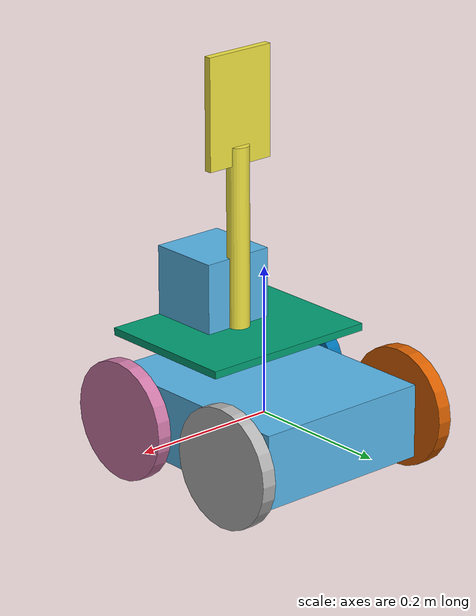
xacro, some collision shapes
<?xml version="1.0" encoding="UTF-8"?>

<robot name="rover" xmlns:xacro="http://www.ros.org/wiki/xacro">

  <xacro:include filename="$(find rover_platform)/urdf/rover.gazebo" />

  <link name="robot_footprint"></link>

  <link name="chassis">
    <pose>0 0 0 0 0 0</pose>

    <inertial>
      <mass value="15.0"/>
      <origin xyz="0.0 0 0" rpy=" 0 0 0"/>
      <inertia
          ixx="0.1" ixy="0" ixz="0"
          iyy="0.1" iyz="0"
          izz="0.1"
      />
    </inertial>

    <collision name="drive_train_collision">
      <origin xyz="0 0 0" rpy="0 0 0" />

      <geometry>
        <box size="0.25 0.3 0.1" />
      </geometry>
    </collision>

    <visual name="drive_train_visual">
      <origin xyz="0 0 0" rpy="0 0 0" />
      <geometry>
        <box size="0.25 0.3 0.1" />
      </geometry>
    </visual>

  </link>

  <link name="payload_platform">
    <pose>0 0 0 0 0 0</pose>

    <inertial>
      <mass value="1.0"/>
      <origin xyz="0.0 0 0" rpy=" 0 0 0"/>
      <inertia
          ixx="0.1" ixy="0" ixz="0"
          iyy="0.1" iyz="0"
          izz="0.1"
      />
    </inertial>

    <collision name="payload_collision">
      <origin xyz="0 0 0" rpy="0 0 0" />
      <geometry>
        <box size="0.25 0.2 0.01" />
      </geometry>
    </collision>

    <visual name="payload_visual">
      <origin xyz="0 0 0" rpy="0 0 0" />
      <geometry>
        <box size="0.25 0.2 0.01" />
      </geometry>
    </visual>

  </link>

  <link name="sensor_ux_beam">
    <pose>0 0 0 0 0 0</pose>

    <inertial>
      <mass value="1.0"/>
      <origin xyz="0.0 0 0" rpy=" 0 0 0"/>
      <inertia
          ixx="0.1" ixy="0" ixz="0"
          iyy="0.1" iyz="0"
          izz="0.1"
      />
    </inertial>

    <collision name="sensor_ux_bar_collision">
      <origin xyz="0 0 0" rpy="0 0 0" />
      <geometry>
        <cylinder radius="0.025" length="0.5" />
      </geometry>
    </collision>

    <visual name="sensor_ux_bar_visual">
      <origin xyz="0 0 0" rpy="0 0 0" />
      <geometry>
        <cylinder radius="0.015" length="0.3" />
      </geometry>
    </visual>

    <collision name="sensor_ux_tablet_collision">
      <origin xyz="0 0 0.2" rpy="0 0 0" />
      <geometry>
        <box size="0.01 0.25 0.35" />
      </geometry>
    </collision>

    <visual name="sensor_ux_tablet_visual">
      <origin xyz="0 0 0.2" rpy="0 0 0" />
      <geometry>
        <box size="0.01 0.1 0.15" />
      </geometry>
    </visual>

  </link>

  <link name="back_left_wheel">
    <pose>0 0 0 0 1.5707 0</pose>

		<inertial>
			<mass value="5.0"/>
			<origin xyz="0 0 0" rpy="0 0 0"/>
			<inertia
          			ixx="0.1" ixy="0" ixz="0"
          			iyy="0.1" iyz="0"
          			izz="0.1"
      			/>
		</inertial>

    <collision name="black_left_wheel_collision">
      <origin xyz="0 0 0" rpy="0 1.5707 0" />
      <geometry>
        <cylinder radius="0.08" length="0.02" />
      </geometry>
    </collision>

    <visual name="black_left_wheel_visual">
      <origin xyz="0 0 0" rpy="0 1.5707 0" />
      <geometry>
        <cylinder radius="0.08" length="0.02" />
      </geometry>
    </visual>

  </link>

  <link name="front_left_wheel">
    <pose>0 0 0 0 1.5707 0</pose>

    <inertial>
			<mass value="5.0"/>
			<origin xyz="0 0 0" rpy="0 0 0"/>
			<inertia
          			ixx="0.1" ixy="0" ixz="0"
          			iyy="0.1" iyz="0"
          			izz="0.1"
      			/>
		</inertial>

    <collision name="front_left_wheel_collision">
      <origin xyz="0 0 0" rpy="0 1.5707 0" />
      <geometry>
        <cylinder radius="0.08" length="0.02" />
      </geometry>
    </collision>

    <visual name="front_left_wheel_visual">
      <origin xyz="0 0 0" rpy="0 1.5707 0" />
      <geometry>
        <cylinder radius="0.08" length="0.02" />
      </geometry>
    </visual>

  </link>

  <link name="back_right_wheel">
    <pose>0 0 0 0 1.5707 0</pose>

    <inertial>
      <mass value="5.0"/>
      <origin xyz="0 0 0" rpy="0 0 0"/>
      <inertia
                ixx="0.1" ixy="0" ixz="0"
                iyy="0.1" iyz="0"
                izz="0.1"
            />
    </inertial>

    <collision name="back_right_wheel_collision">
      <origin xyz="0 0 0" rpy="0 1.5707 0" />
      <geometry>
        <cylinder radius="0.08" length="0.02" />
      </geometry>
    </collision>

    <visual name="back_right_wheel_visual">
      <origin xyz="0 0 0" rpy="0 1.5707 0" />
      <geometry>
        <cylinder radius="0.08" length="0.02" />
      </geometry>
    </visual>

  </link>

  <link name="front_right_wheel">
    <pose>0 0 0 0 1.5707 0</pose>

    <inertial>
      <mass value="5.0"/>
      <origin xyz="0 0 0" rpy="0 0 0"/>
      <inertia
                ixx="0.1" ixy="0" ixz="0"
                iyy="0.1" iyz="0"
                izz="0.1"
            />
    </inertial>

    <collision name="front_right_wheel_collision">
      <origin xyz="0 0 0" rpy="0 1.5707 0" />
      <geometry>
        <cylinder radius="0.08" length="0.02" />
      </geometry>
    </collision>

    <visual name="front_right_wheel_visual">
      <origin xyz="0 0 0" rpy="0 1.5707 0" />
      <geometry>
        <cylinder radius="0.08" length="0.02" />
      </geometry>
    </visual>

  </link>

  <link name="camera">
    <pose>0 0 0 0 0 0</pose>
    <collision>
      <origin xyz="0 0 0" rpy="0 0 0" />
      <geometry>
        <box size="0.01 0.01 0.01" />
      </geometry>
    </collision>
    <visual>
      <origin xyz="0 0 0" rpy="0 0 0" />
      <geometry>
        <box size="0.01 0.01 0.01" />
      </geometry>
    </visual>
  </link>

  <link name="hokuyo">
	    <pose>0 0 0 0 0 0</pose>
	    <inertial>
	       <mass value="0.1"/>
	       <origin xyz="0 0 0" rpy="0 0 0"/>
	       <inertia
		 ixx="1e-6" ixy="0" ixz="0"
		 iyy="1e-6" iyz="0"
		 izz="1e-6"
		/>
	    </inertial>

	    <collision>
	       <origin xyz="0 0 0" rpy="0 0 0"/>
	       <geometry>
		         <box size="0.1 0.1 0.1" />
	       </geometry>
	    </collision>

	    <visual>
	       <origin xyz="0 0 0" rpy="0 0 0"/>
	       <geometry>
		         <mesh filename="package://rover_platform/meshes/hokuyo.dae"/>
	       </geometry>
	    </visual>
	  </link>

  <joint name="robot_footprint_chassis_joint" type="fixed">
    <origin xyz="0 0 0" rpy="0 0 0" />
    <parent link="robot_footprint" />
    <child link="chassis" />
  </joint>

  <joint name="chassis_hokuyo_joint" type="fixed">
      <origin xyz="0 -0.1 0.15" rpy="0 0 -1.5707"/>
	    <child link="hokuyo"/>
	    <parent link="chassis"/>
      <axis xyz="0 1 0" rpy="0 0 0"/>
  </joint>

  <joint name="chassis_payload_joint" type="fixed">
    <origin xyz="0 -0.05 0.1" rpy="0 0 0" />
    <parent link="chassis" />
    <child link="payload_platform" />
  </joint>

  <joint name="chassis_sensor_ux_joint" type="fixed">
    <origin xyz="0 -0.05 0.2" rpy="0 0 1.57" />
    <parent link="chassis" />
    <child link="sensor_ux_beam" />
  </joint>

  <joint name="sensor_ux_camera_joint" type="fixed">
    <origin xyz="-0.01 0 0.25" rpy="0 0 3.14159" />
    <parent link="sensor_ux_beam" />
    <child link="camera" />
    <axis xyz="0 1 0" rpy="0 0 0"/>
  </joint>

  <joint name="chassis_left_back_wheel_joint" type="continuous">
    <origin xyz="-0.15 -0.1 0" rpy="0 0 0"/>
    <child link="back_left_wheel" />
    <parent link="chassis"/>
    <axis xyz="1 0 0" rpy="0 0 0"/>
    <limit effort="10000" velocity="1000"/>
    <joint_properties damping="1.0" friction="1.0"/>
  </joint>

  <joint name="chassis_left_front_wheel_joint" type="continuous">
    <origin xyz="-0.15 0.1 0" rpy="0 0 0"/>
    <child link="front_left_wheel" />
    <parent link="chassis"/>
    <axis xyz="1 0 0" rpy="0 0 0"/>
    <limit effort="10000" velocity="1000"/>
    <joint_properties damping="1.0" friction="1.0"/>
  </joint>

  <joint name="chassis_right_back_wheel_joint" type="continuous">
    <origin xyz="0.15 -0.1 0" rpy="0 0 0"/>
    <child link="back_right_wheel" />
    <parent link="chassis"/>
    <axis xyz="1 0 0" rpy="0 0 0"/>
    <limit effort="10000" velocity="1000"/>
    <joint_properties damping="1.0" friction="1.0"/>
  </joint>

  <joint name="chassis_right_front_wheel_joint" type="continuous">
    <origin xyz="0.15 0.1 0" rpy="0 0 0"/>
    <child link="front_right_wheel" />
    <parent link="chassis"/>
    <axis xyz="1 0 0" rpy="0 0 0"/>
    <limit effort="10000" velocity="1000"/>
    <joint_properties damping="1.0" friction="1.0"/>
  </joint>

</robot>
